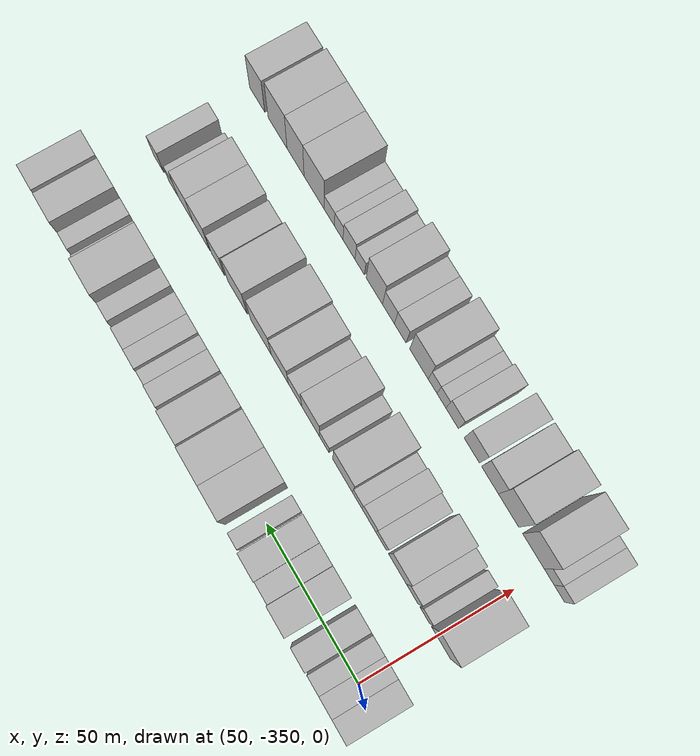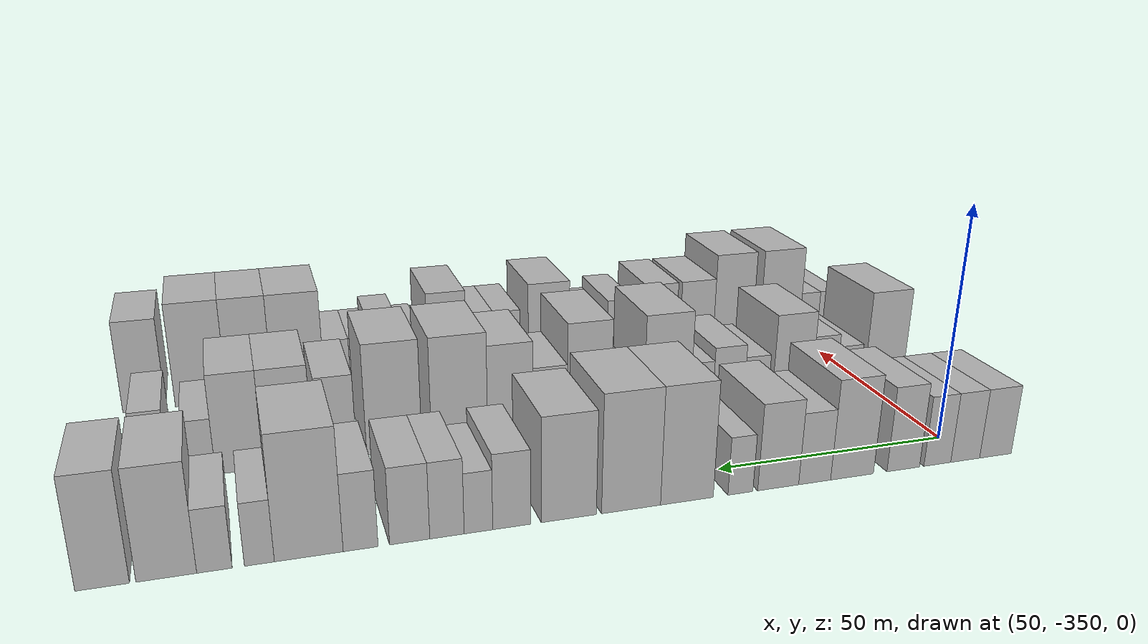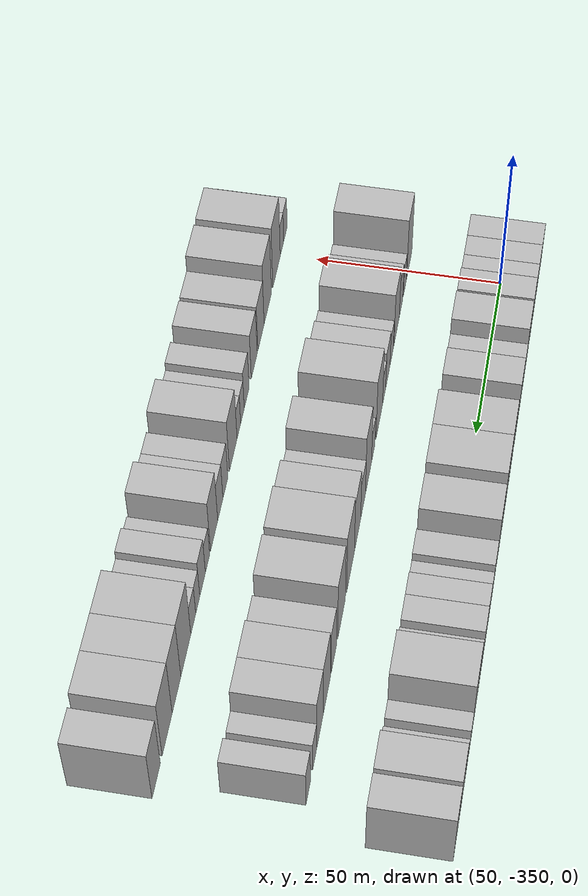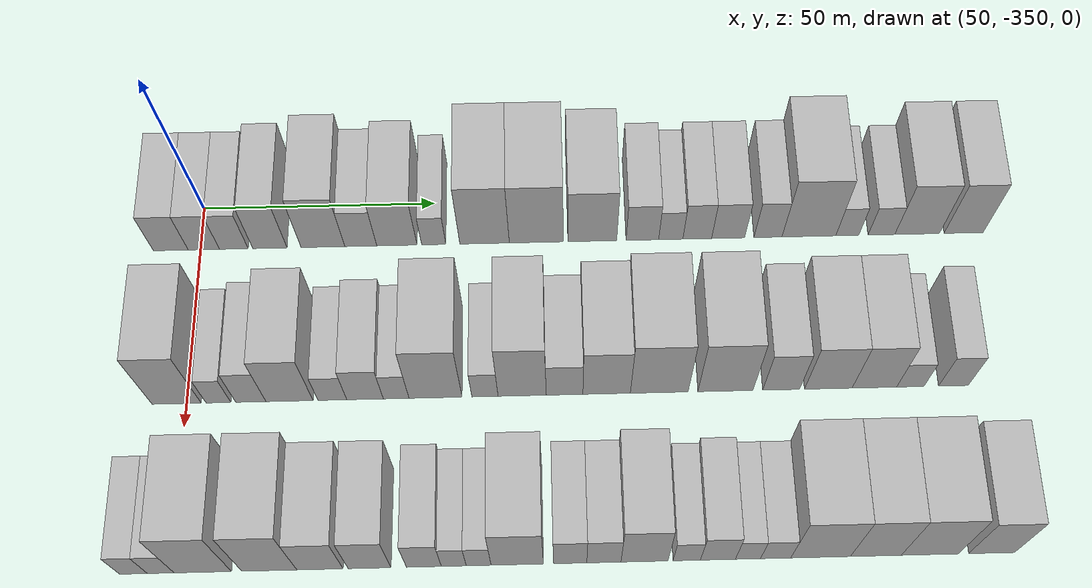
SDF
<sdf version="1.6">
 <world name="default">
  <model name="building_1">
   <static>1</static>
   <pose>50.0000 -356.2770 0 0.000000 0.000000 0.000000</pose>
   <link name="link">
    <pose>0 0 7.50 0 0 0</pose>
    <collision name="collision"><geometry><box><size>20.0000 7.4460 15.0000</size></box></geometry></collision>
    <visual name="visual">
     <cast_shadows>0</cast_shadows>
     <geometry><box><size>20.0000 7.4460 15.0000</size></box></geometry>
     <material>
      <script>
       <uri>model://HANNAS_wall/materials/scripts</uri>
       <uri>model://HANNAS_wall/materials/textures</uri>
       <name>vrc/HANNAS_wall</name>
      </script>
     </material>
    </visual>
   </link>
  </model>
  <model name="building_2">
   <static>1</static>
   <pose>50.0000 -349.2100 0 0.000000 0.000000 0.000000</pose>
   <link name="link">
    <pose>0 0 7.50 0 0 0</pose>
    <collision name="collision"><geometry><box><size>20.0000 6.6880 15.0000</size></box></geometry></collision>
    <visual name="visual">
     <cast_shadows>0</cast_shadows>
     <geometry><box><size>20.0000 6.6880 15.0000</size></box></geometry>
     <material>
      <script>
       <uri>model://HANNAS_wall/materials/scripts</uri>
       <uri>model://HANNAS_wall/materials/textures</uri>
       <name>vrc/HANNAS_wall</name>
      </script>
     </material>
    </visual>
   </link>
  </model>
  <model name="building_3">
   <static>1</static>
   <pose>50.0000 -342.8018 0 0.000000 0.000000 0.000000</pose>
   <link name="link">
    <pose>0 0 7.50 0 0 0</pose>
    <collision name="collision"><geometry><box><size>20.0000 6.1283 15.0000</size></box></geometry></collision>
    <visual name="visual">
     <cast_shadows>0</cast_shadows>
     <geometry><box><size>20.0000 6.1283 15.0000</size></box></geometry>
     <material>
      <script>
       <uri>model://HANNAS_wall/materials/scripts</uri>
       <uri>model://HANNAS_wall/materials/textures</uri>
       <name>vrc/HANNAS_wall</name>
      </script>
     </material>
    </visual>
   </link>
  </model>
  <model name="building_4">
   <static>1</static>
   <pose>50.0000 -335.0817 0 0.000000 0.000000 0.000000</pose>
   <link name="link">
    <pose>0 0 9.00 0 0 0</pose>
    <collision name="collision"><geometry><box><size>20.0000 7.3120 18.0000</size></box></geometry></collision>
    <visual name="visual">
     <cast_shadows>0</cast_shadows>
     <geometry><box><size>20.0000 7.3120 18.0000</size></box></geometry>
     <material>
      <script>
       <uri>model://HANNAS_wall/materials/scripts</uri>
       <uri>model://HANNAS_wall/materials/textures</uri>
       <name>vrc/HANNAS_wall</name>
      </script>
     </material>
    </visual>
   </link>
  </model>
  <model name="building_5">
   <static>1</static>
   <pose>50.0000 -323.7454 0 0.000000 0.000000 0.000000</pose>
   <link name="link">
    <pose>0 0 10.50 0 0 0</pose>
    <collision name="collision"><geometry><box><size>20.0000 9.3605 21.0000</size></box></geometry></collision>
    <visual name="visual">
     <cast_shadows>0</cast_shadows>
     <geometry><box><size>20.0000 9.3605 21.0000</size></box></geometry>
     <material>
      <script>
       <uri>model://HANNAS_wall/materials/scripts</uri>
       <uri>model://HANNAS_wall/materials/textures</uri>
       <name>vrc/HANNAS_wall</name>
      </script>
     </material>
    </visual>
   </link>
  </model>
  <model name="building_6">
   <static>1</static>
   <pose>50.0000 -315.6376 0 0.000000 0.000000 0.000000</pose>
   <link name="link">
    <pose>0 0 7.50 0 0 0</pose>
    <collision name="collision"><geometry><box><size>20.0000 6.8551 15.0000</size></box></geometry></collision>
    <visual name="visual">
     <cast_shadows>0</cast_shadows>
     <geometry><box><size>20.0000 6.8551 15.0000</size></box></geometry>
     <material>
      <script>
       <uri>model://HANNAS_wall/materials/scripts</uri>
       <uri>model://HANNAS_wall/materials/textures</uri>
       <name>vrc/HANNAS_wall</name>
      </script>
     </material>
    </visual>
   </link>
  </model>
  <model name="building_7">
   <static>1</static>
   <pose>50.0000 -307.8931 0 0.000000 0.000000 0.000000</pose>
   <link name="link">
    <pose>0 0 9.00 0 0 0</pose>
    <collision name="collision"><geometry><box><size>20.0000 8.6339 18.0000</size></box></geometry></collision>
    <visual name="visual">
     <cast_shadows>0</cast_shadows>
     <geometry><box><size>20.0000 8.6339 18.0000</size></box></geometry>
     <material>
      <script>
       <uri>model://HANNAS_wall/materials/scripts</uri>
       <uri>model://HANNAS_wall/materials/textures</uri>
       <name>vrc/HANNAS_wall</name>
      </script>
     </material>
    </visual>
   </link>
  </model>
  <model name="building_8">
   <static>1</static>
   <pose>50.0000 -299.9925 0 0.000000 0.000000 0.000000</pose>
   <link name="link">
    <pose>0 0 6.00 0 0 0</pose>
    <collision name="collision"><geometry><box><size>20.0000 5.1674 12.0000</size></box></geometry></collision>
    <visual name="visual">
     <cast_shadows>0</cast_shadows>
     <geometry><box><size>20.0000 5.1674 12.0000</size></box></geometry>
     <material>
      <script>
       <uri>model://HANNAS_wall/materials/scripts</uri>
       <uri>model://HANNAS_wall/materials/textures</uri>
       <name>vrc/HANNAS_wall</name>
      </script>
     </material>
    </visual>
   </link>
  </model>
  <model name="building_9">
   <static>1</static>
   <pose>50.0000 -289.0979 0 0.000000 0.000000 0.000000</pose>
   <link name="link">
    <pose>0 0 12.00 0 0 0</pose>
    <collision name="collision"><geometry><box><size>20.0000 10.6217 24.0000</size></box></geometry></collision>
    <visual name="visual">
     <cast_shadows>0</cast_shadows>
     <geometry><box><size>20.0000 10.6217 24.0000</size></box></geometry>
     <material>
      <script>
       <uri>model://HANNAS_wall/materials/scripts</uri>
       <uri>model://HANNAS_wall/materials/textures</uri>
       <name>vrc/HANNAS_wall</name>
      </script>
     </material>
    </visual>
   </link>
  </model>
  <model name="building_10">
   <static>1</static>
   <pose>50.0000 -278.0000 0 0.000000 0.000000 0.000000</pose>
   <link name="link">
    <pose>0 0 12.00 0 0 0</pose>
    <collision name="collision"><geometry><box><size>20.0000 11.5742 24.0000</size></box></geometry></collision>
    <visual name="visual">
     <cast_shadows>0</cast_shadows>
     <geometry><box><size>20.0000 11.5742 24.0000</size></box></geometry>
     <material>
      <script>
       <uri>model://HANNAS_wall/materials/scripts</uri>
       <uri>model://HANNAS_wall/materials/textures</uri>
       <name>vrc/HANNAS_wall</name>
      </script>
     </material>
    </visual>
   </link>
  </model>
  <model name="building_11">
   <static>1</static>
   <pose>50.0000 -265.9669 0 0.000000 0.000000 0.000000</pose>
   <link name="link">
    <pose>0 0 10.50 0 0 0</pose>
    <collision name="collision"><geometry><box><size>20.0000 10.4920 21.0000</size></box></geometry></collision>
    <visual name="visual">
     <cast_shadows>0</cast_shadows>
     <geometry><box><size>20.0000 10.4920 21.0000</size></box></geometry>
     <material>
      <script>
       <uri>model://HANNAS_wall/materials/scripts</uri>
       <uri>model://HANNAS_wall/materials/textures</uri>
       <name>vrc/HANNAS_wall</name>
      </script>
     </material>
    </visual>
   </link>
  </model>
  <model name="building_12">
   <static>1</static>
   <pose>50.0000 -255.2145 0 0.000000 0.000000 0.000000</pose>
   <link name="link">
    <pose>0 0 7.50 0 0 0</pose>
    <collision name="collision"><geometry><box><size>20.0000 7.0128 15.0000</size></box></geometry></collision>
    <visual name="visual">
     <cast_shadows>0</cast_shadows>
     <geometry><box><size>20.0000 7.0128 15.0000</size></box></geometry>
     <material>
      <script>
       <uri>model://HANNAS_wall/materials/scripts</uri>
       <uri>model://HANNAS_wall/materials/textures</uri>
       <name>vrc/HANNAS_wall</name>
      </script>
     </material>
    </visual>
   </link>
  </model>
  <model name="building_13">
   <static>1</static>
   <pose>50.0000 -249.1054 0 0.000000 0.000000 0.000000</pose>
   <link name="link">
    <pose>0 0 6.00 0 0 0</pose>
    <collision name="collision"><geometry><box><size>20.0000 5.2054 12.0000</size></box></geometry></collision>
    <visual name="visual">
     <cast_shadows>0</cast_shadows>
     <geometry><box><size>20.0000 5.2054 12.0000</size></box></geometry>
     <material>
      <script>
       <uri>model://HANNAS_wall/materials/scripts</uri>
       <uri>model://HANNAS_wall/materials/textures</uri>
       <name>vrc/HANNAS_wall</name>
      </script>
     </material>
    </visual>
   </link>
  </model>
  <model name="building_14">
   <static>1</static>
   <pose>50.0000 -243.4042 0 0.000000 0.000000 0.000000</pose>
   <link name="link">
    <pose>0 0 7.50 0 0 0</pose>
    <collision name="collision"><geometry><box><size>20.0000 6.1970 15.0000</size></box></geometry></collision>
    <visual name="visual">
     <cast_shadows>0</cast_shadows>
     <geometry><box><size>20.0000 6.1970 15.0000</size></box></geometry>
     <material>
      <script>
       <uri>model://HANNAS_wall/materials/scripts</uri>
       <uri>model://HANNAS_wall/materials/textures</uri>
       <name>vrc/HANNAS_wall</name>
      </script>
     </material>
    </visual>
   </link>
  </model>
  <model name="building_15">
   <static>1</static>
   <pose>50.0000 -236.7528 0 0.000000 0.000000 0.000000</pose>
   <link name="link">
    <pose>0 0 7.50 0 0 0</pose>
    <collision name="collision"><geometry><box><size>20.0000 7.1060 15.0000</size></box></geometry></collision>
    <visual name="visual">
     <cast_shadows>0</cast_shadows>
     <geometry><box><size>20.0000 7.1060 15.0000</size></box></geometry>
     <material>
      <script>
       <uri>model://HANNAS_wall/materials/scripts</uri>
       <uri>model://HANNAS_wall/materials/textures</uri>
       <name>vrc/HANNAS_wall</name>
      </script>
     </material>
    </visual>
   </link>
  </model>
  <model name="building_16">
   <static>1</static>
   <pose>50.0000 -228.1821 0 0.000000 0.000000 0.000000</pose>
   <link name="link">
    <pose>0 0 7.50 0 0 0</pose>
    <collision name="collision"><geometry><box><size>20.0000 6.0353 15.0000</size></box></geometry></collision>
    <visual name="visual">
     <cast_shadows>0</cast_shadows>
     <geometry><box><size>20.0000 6.0353 15.0000</size></box></geometry>
     <material>
      <script>
       <uri>model://HANNAS_wall/materials/scripts</uri>
       <uri>model://HANNAS_wall/materials/textures</uri>
       <name>vrc/HANNAS_wall</name>
      </script>
     </material>
    </visual>
   </link>
  </model>
  <model name="building_17">
   <static>1</static>
   <pose>50.0000 -219.3494 0 0.000000 0.000000 0.000000</pose>
   <link name="link">
    <pose>0 0 12.00 0 0 0</pose>
    <collision name="collision"><geometry><box><size>20.0000 11.6301 24.0000</size></box></geometry></collision>
    <visual name="visual">
     <cast_shadows>0</cast_shadows>
     <geometry><box><size>20.0000 11.6301 24.0000</size></box></geometry>
     <material>
      <script>
       <uri>model://HANNAS_wall/materials/scripts</uri>
       <uri>model://HANNAS_wall/materials/textures</uri>
       <name>vrc/HANNAS_wall</name>
      </script>
     </material>
    </visual>
   </link>
  </model>
  <model name="building_18">
   <static>1</static>
   <pose>50.0000 -211.0575 0 0.000000 0.000000 0.000000</pose>
   <link name="link">
    <pose>0 0 6.00 0 0 0</pose>
    <collision name="collision"><geometry><box><size>20.0000 4.9537 12.0000</size></box></geometry></collision>
    <visual name="visual">
     <cast_shadows>0</cast_shadows>
     <geometry><box><size>20.0000 4.9537 12.0000</size></box></geometry>
     <material>
      <script>
       <uri>model://HANNAS_wall/materials/scripts</uri>
       <uri>model://HANNAS_wall/materials/textures</uri>
       <name>vrc/HANNAS_wall</name>
      </script>
     </material>
    </visual>
   </link>
  </model>
  <model name="building_19">
   <static>1</static>
   <pose>50.0000 -203.7017 0 0.000000 0.000000 0.000000</pose>
   <link name="link">
    <pose>0 0 6.00 0 0 0</pose>
    <collision name="collision"><geometry><box><size>20.0000 5.7579 12.0000</size></box></geometry></collision>
    <visual name="visual">
     <cast_shadows>0</cast_shadows>
     <geometry><box><size>20.0000 5.7579 12.0000</size></box></geometry>
     <material>
      <script>
       <uri>model://HANNAS_wall/materials/scripts</uri>
       <uri>model://HANNAS_wall/materials/textures</uri>
       <name>vrc/HANNAS_wall</name>
      </script>
     </material>
    </visual>
   </link>
  </model>
  <model name="building_20">
   <static>1</static>
   <pose>50.0000 -195.9950 0 0.000000 0.000000 0.000000</pose>
   <link name="link">
    <pose>0 0 10.50 0 0 0</pose>
    <collision name="collision"><geometry><box><size>20.0000 9.6555 21.0000</size></box></geometry></collision>
    <visual name="visual">
     <cast_shadows>0</cast_shadows>
     <geometry><box><size>20.0000 9.6555 21.0000</size></box></geometry>
     <material>
      <script>
       <uri>model://HANNAS_wall/materials/scripts</uri>
       <uri>model://HANNAS_wall/materials/textures</uri>
       <name>vrc/HANNAS_wall</name>
      </script>
     </material>
    </visual>
   </link>
  </model>
  <model name="building_21">
   <static>1</static>
   <pose>50.0000 -185.9400 0 0.000000 0.000000 0.000000</pose>
   <link name="link">
    <pose>0 0 10.50 0 0 0</pose>
    <collision name="collision"><geometry><box><size>20.0000 8.4545 21.0000</size></box></geometry></collision>
    <visual name="visual">
     <cast_shadows>0</cast_shadows>
     <geometry><box><size>20.0000 8.4545 21.0000</size></box></geometry>
     <material>
      <script>
       <uri>model://HANNAS_wall/materials/scripts</uri>
       <uri>model://HANNAS_wall/materials/textures</uri>
       <name>vrc/HANNAS_wall</name>
      </script>
     </material>
    </visual>
   </link>
  </model>
  <model name="building_82">
   <static>1</static>
   <pose>85.0000 -351.9914 0 0.000000 0.000000 0.000000</pose>
   <link name="link">
    <pose>0 0 12.00 0 0 0</pose>
    <collision name="collision"><geometry><box><size>20.0000 10.0171 24.0000</size></box></geometry></collision>
    <visual name="visual">
     <cast_shadows>0</cast_shadows>
     <geometry><box><size>20.0000 10.0171 24.0000</size></box></geometry>
     <material>
      <script>
       <uri>model://HANNAS_wall/materials/scripts</uri>
       <uri>model://HANNAS_wall/materials/textures</uri>
       <name>vrc/HANNAS_wall</name>
      </script>
     </material>
    </visual>
   </link>
  </model>
  <model name="building_83">
   <static>1</static>
   <pose>85.0000 -343.4618 0 0.000000 0.000000 0.000000</pose>
   <link name="link">
    <pose>0 0 6.00 0 0 0</pose>
    <collision name="collision"><geometry><box><size>20.0000 5.0421 12.0000</size></box></geometry></collision>
    <visual name="visual">
     <cast_shadows>0</cast_shadows>
     <geometry><box><size>20.0000 5.0421 12.0000</size></box></geometry>
     <material>
      <script>
       <uri>model://HANNAS_wall/materials/scripts</uri>
       <uri>model://HANNAS_wall/materials/textures</uri>
       <name>vrc/HANNAS_wall</name>
      </script>
     </material>
    </visual>
   </link>
  </model>
  <model name="building_84">
   <static>1</static>
   <pose>85.0000 -336.8630 0 0.000000 0.000000 0.000000</pose>
   <link name="link">
    <pose>0 0 7.50 0 0 0</pose>
    <collision name="collision"><geometry><box><size>20.0000 6.1555 15.0000</size></box></geometry></collision>
    <visual name="visual">
     <cast_shadows>0</cast_shadows>
     <geometry><box><size>20.0000 6.1555 15.0000</size></box></geometry>
     <material>
      <script>
       <uri>model://HANNAS_wall/materials/scripts</uri>
       <uri>model://HANNAS_wall/materials/textures</uri>
       <name>vrc/HANNAS_wall</name>
      </script>
     </material>
    </visual>
   </link>
  </model>
  <model name="building_85">
   <static>1</static>
   <pose>85.0000 -328.9729 0 0.000000 0.000000 0.000000</pose>
   <link name="link">
    <pose>0 0 10.50 0 0 0</pose>
    <collision name="collision"><geometry><box><size>20.0000 9.6248 21.0000</size></box></geometry></collision>
    <visual name="visual">
     <cast_shadows>0</cast_shadows>
     <geometry><box><size>20.0000 9.6248 21.0000</size></box></geometry>
     <material>
      <script>
       <uri>model://HANNAS_wall/materials/scripts</uri>
       <uri>model://HANNAS_wall/materials/textures</uri>
       <name>vrc/HANNAS_wall</name>
      </script>
     </material>
    </visual>
   </link>
  </model>
  <model name="building_86">
   <static>1</static>
   <pose>85.0000 -320.2186 0 0.000000 0.000000 0.000000</pose>
   <link name="link">
    <pose>0 0 6.00 0 0 0</pose>
    <collision name="collision"><geometry><box><size>20.0000 5.8838 12.0000</size></box></geometry></collision>
    <visual name="visual">
     <cast_shadows>0</cast_shadows>
     <geometry><box><size>20.0000 5.8838 12.0000</size></box></geometry>
     <material>
      <script>
       <uri>model://HANNAS_wall/materials/scripts</uri>
       <uri>model://HANNAS_wall/materials/textures</uri>
       <name>vrc/HANNAS_wall</name>
      </script>
     </material>
    </visual>
   </link>
  </model>
  <model name="building_87">
   <static>1</static>
   <pose>85.0000 -313.5499 0 0.000000 0.000000 0.000000</pose>
   <link name="link">
    <pose>0 0 7.50 0 0 0</pose>
    <collision name="collision"><geometry><box><size>20.0000 7.4537 15.0000</size></box></geometry></collision>
    <visual name="visual">
     <cast_shadows>0</cast_shadows>
     <geometry><box><size>20.0000 7.4537 15.0000</size></box></geometry>
     <material>
      <script>
       <uri>model://HANNAS_wall/materials/scripts</uri>
       <uri>model://HANNAS_wall/materials/textures</uri>
       <name>vrc/HANNAS_wall</name>
      </script>
     </material>
    </visual>
   </link>
  </model>
  <model name="building_88">
   <static>1</static>
   <pose>85.0000 -307.1971 0 0.000000 0.000000 0.000000</pose>
   <link name="link">
    <pose>0 0 6.00 0 0 0</pose>
    <collision name="collision"><geometry><box><size>20.0000 5.2519 12.0000</size></box></geometry></collision>
    <visual name="visual">
     <cast_shadows>0</cast_shadows>
     <geometry><box><size>20.0000 5.2519 12.0000</size></box></geometry>
     <material>
      <script>
       <uri>model://HANNAS_wall/materials/scripts</uri>
       <uri>model://HANNAS_wall/materials/textures</uri>
       <name>vrc/HANNAS_wall</name>
      </script>
     </material>
    </visual>
   </link>
  </model>
  <model name="building_89">
   <static>1</static>
   <pose>85.0000 -299.1506 0 0.000000 0.000000 0.000000</pose>
   <link name="link">
    <pose>0 0 12.00 0 0 0</pose>
    <collision name="collision"><geometry><box><size>20.0000 10.8411 24.0000</size></box></geometry></collision>
    <visual name="visual">
     <cast_shadows>0</cast_shadows>
     <geometry><box><size>20.0000 10.8411 24.0000</size></box></geometry>
     <material>
      <script>
       <uri>model://HANNAS_wall/materials/scripts</uri>
       <uri>model://HANNAS_wall/materials/textures</uri>
       <name>vrc/HANNAS_wall</name>
      </script>
     </material>
    </visual>
   </link>
  </model>
  <model name="building_90">
   <static>1</static>
   <pose>85.0000 -289.0468 0 0.000000 0.000000 0.000000</pose>
   <link name="link">
    <pose>0 0 6.00 0 0 0</pose>
    <collision name="collision"><geometry><box><size>20.0000 5.3664 12.0000</size></box></geometry></collision>
    <visual name="visual">
     <cast_shadows>0</cast_shadows>
     <geometry><box><size>20.0000 5.3664 12.0000</size></box></geometry>
     <material>
      <script>
       <uri>model://HANNAS_wall/materials/scripts</uri>
       <uri>model://HANNAS_wall/materials/textures</uri>
       <name>vrc/HANNAS_wall</name>
      </script>
     </material>
    </visual>
   </link>
  </model>
  <model name="building_91">
   <static>1</static>
   <pose>85.0000 -281.4269 0 0.000000 0.000000 0.000000</pose>
   <link name="link">
    <pose>0 0 12.00 0 0 0</pose>
    <collision name="collision"><geometry><box><size>20.0000 9.8734 24.0000</size></box></geometry></collision>
    <visual name="visual">
     <cast_shadows>0</cast_shadows>
     <geometry><box><size>20.0000 9.8734 24.0000</size></box></geometry>
     <material>
      <script>
       <uri>model://HANNAS_wall/materials/scripts</uri>
       <uri>model://HANNAS_wall/materials/textures</uri>
       <name>vrc/HANNAS_wall</name>
      </script>
     </material>
    </visual>
   </link>
  </model>
  <model name="building_92">
   <static>1</static>
   <pose>85.0000 -272.7439 0 0.000000 0.000000 0.000000</pose>
   <link name="link">
    <pose>0 0 7.50 0 0 0</pose>
    <collision name="collision"><geometry><box><size>20.0000 7.4925 15.0000</size></box></geometry></collision>
    <visual name="visual">
     <cast_shadows>0</cast_shadows>
     <geometry><box><size>20.0000 7.4925 15.0000</size></box></geometry>
     <material>
      <script>
       <uri>model://HANNAS_wall/materials/scripts</uri>
       <uri>model://HANNAS_wall/materials/textures</uri>
       <name>vrc/HANNAS_wall</name>
      </script>
     </material>
    </visual>
   </link>
  </model>
  <model name="building_93">
   <static>1</static>
   <pose>85.0000 -264.1344 0 0.000000 0.000000 0.000000</pose>
   <link name="link">
    <pose>0 0 10.50 0 0 0</pose>
    <collision name="collision"><geometry><box><size>20.0000 9.7265 21.0000</size></box></geometry></collision>
    <visual name="visual">
     <cast_shadows>0</cast_shadows>
     <geometry><box><size>20.0000 9.7265 21.0000</size></box></geometry>
     <material>
      <script>
       <uri>model://HANNAS_wall/materials/scripts</uri>
       <uri>model://HANNAS_wall/materials/textures</uri>
       <name>vrc/HANNAS_wall</name>
      </script>
     </material>
    </visual>
   </link>
  </model>
  <model name="building_94">
   <static>1</static>
   <pose>85.0000 -253.3458 0 0.000000 0.000000 0.000000</pose>
   <link name="link">
    <pose>0 0 12.00 0 0 0</pose>
    <collision name="collision"><geometry><box><size>20.0000 11.8507 24.0000</size></box></geometry></collision>
    <visual name="visual">
     <cast_shadows>0</cast_shadows>
     <geometry><box><size>20.0000 11.8507 24.0000</size></box></geometry>
     <material>
      <script>
       <uri>model://HANNAS_wall/materials/scripts</uri>
       <uri>model://HANNAS_wall/materials/textures</uri>
       <name>vrc/HANNAS_wall</name>
      </script>
     </material>
    </visual>
   </link>
  </model>
  <model name="building_95">
   <static>1</static>
   <pose>85.0000 -239.7643 0 0.000000 0.000000 0.000000</pose>
   <link name="link">
    <pose>0 0 12.00 0 0 0</pose>
    <collision name="collision"><geometry><box><size>20.0000 11.3125 24.0000</size></box></geometry></collision>
    <visual name="visual">
     <cast_shadows>0</cast_shadows>
     <geometry><box><size>20.0000 11.3125 24.0000</size></box></geometry>
     <material>
      <script>
       <uri>model://HANNAS_wall/materials/scripts</uri>
       <uri>model://HANNAS_wall/materials/textures</uri>
       <name>vrc/HANNAS_wall</name>
      </script>
     </material>
    </visual>
   </link>
  </model>
  <model name="building_96">
   <static>1</static>
   <pose>85.0000 -228.3122 0 0.000000 0.000000 0.000000</pose>
   <link name="link">
    <pose>0 0 9.00 0 0 0</pose>
    <collision name="collision"><geometry><box><size>20.0000 7.5917 18.0000</size></box></geometry></collision>
    <visual name="visual">
     <cast_shadows>0</cast_shadows>
     <geometry><box><size>20.0000 7.5917 18.0000</size></box></geometry>
     <material>
      <script>
       <uri>model://HANNAS_wall/materials/scripts</uri>
       <uri>model://HANNAS_wall/materials/textures</uri>
       <name>vrc/HANNAS_wall</name>
      </script>
     </material>
    </visual>
   </link>
  </model>
  <model name="building_97">
   <static>1</static>
   <pose>85.0000 -218.6162 0 0.000000 0.000000 0.000000</pose>
   <link name="link">
    <pose>0 0 10.50 0 0 0</pose>
    <collision name="collision"><geometry><box><size>20.0000 9.8005 21.0000</size></box></geometry></collision>
    <visual name="visual">
     <cast_shadows>0</cast_shadows>
     <geometry><box><size>20.0000 9.8005 21.0000</size></box></geometry>
     <material>
      <script>
       <uri>model://HANNAS_wall/materials/scripts</uri>
       <uri>model://HANNAS_wall/materials/textures</uri>
       <name>vrc/HANNAS_wall</name>
      </script>
     </material>
    </visual>
   </link>
  </model>
  <model name="building_98">
   <static>1</static>
   <pose>85.0000 -209.1326 0 0.000000 0.000000 0.000000</pose>
   <link name="link">
    <pose>0 0 10.50 0 0 0</pose>
    <collision name="collision"><geometry><box><size>20.0000 9.1667 21.0000</size></box></geometry></collision>
    <visual name="visual">
     <cast_shadows>0</cast_shadows>
     <geometry><box><size>20.0000 9.1667 21.0000</size></box></geometry>
     <material>
      <script>
       <uri>model://HANNAS_wall/materials/scripts</uri>
       <uri>model://HANNAS_wall/materials/textures</uri>
       <name>vrc/HANNAS_wall</name>
      </script>
     </material>
    </visual>
   </link>
  </model>
  <model name="building_99">
   <static>1</static>
   <pose>85.0000 -201.7392 0 0.000000 0.000000 0.000000</pose>
   <link name="link">
    <pose>0 0 6.00 0 0 0</pose>
    <collision name="collision"><geometry><box><size>20.0000 5.6201 12.0000</size></box></geometry></collision>
    <visual name="visual">
     <cast_shadows>0</cast_shadows>
     <geometry><box><size>20.0000 5.6201 12.0000</size></box></geometry>
     <material>
      <script>
       <uri>model://HANNAS_wall/materials/scripts</uri>
       <uri>model://HANNAS_wall/materials/textures</uri>
       <name>vrc/HANNAS_wall</name>
      </script>
     </material>
    </visual>
   </link>
  </model>
  <model name="building_100">
   <static>1</static>
   <pose>85.0000 -192.8710 0 0.000000 0.000000 0.000000</pose>
   <link name="link">
    <pose>0 0 7.50 0 0 0</pose>
    <collision name="collision"><geometry><box><size>20.0000 6.1164 15.0000</size></box></geometry></collision>
    <visual name="visual">
     <cast_shadows>0</cast_shadows>
     <geometry><box><size>20.0000 6.1164 15.0000</size></box></geometry>
     <material>
      <script>
       <uri>model://HANNAS_wall/materials/scripts</uri>
       <uri>model://HANNAS_wall/materials/textures</uri>
       <name>vrc/HANNAS_wall</name>
      </script>
     </material>
    </visual>
   </link>
  </model>
  <model name="building_163">
   <static>1</static>
   <pose>120.0000 -357.3202 0 0.000000 0.000000 0.000000</pose>
   <link name="link">
    <pose>0 0 6.00 0 0 0</pose>
    <collision name="collision"><geometry><box><size>20.0000 5.3596 12.0000</size></box></geometry></collision>
    <visual name="visual">
     <cast_shadows>0</cast_shadows>
     <geometry><box><size>20.0000 5.3596 12.0000</size></box></geometry>
     <material>
      <script>
       <uri>model://HANNAS_wall/materials/scripts</uri>
       <uri>model://HANNAS_wall/materials/textures</uri>
       <name>vrc/HANNAS_wall</name>
      </script>
     </material>
    </visual>
   </link>
  </model>
  <model name="building_164">
   <static>1</static>
   <pose>120.0000 -352.0387 0 0.000000 0.000000 0.000000</pose>
   <link name="link">
    <pose>0 0 6.00 0 0 0</pose>
    <collision name="collision"><geometry><box><size>20.0000 5.2035 12.0000</size></box></geometry></collision>
    <visual name="visual">
     <cast_shadows>0</cast_shadows>
     <geometry><box><size>20.0000 5.2035 12.0000</size></box></geometry>
     <material>
      <script>
       <uri>model://HANNAS_wall/materials/scripts</uri>
       <uri>model://HANNAS_wall/materials/textures</uri>
       <name>vrc/HANNAS_wall</name>
      </script>
     </material>
    </visual>
   </link>
  </model>
  <model name="building_165">
   <static>1</static>
   <pose>120.0000 -343.8712 0 0.000000 0.000000 0.000000</pose>
   <link name="link">
    <pose>0 0 12.00 0 0 0</pose>
    <collision name="collision"><geometry><box><size>20.0000 11.1315 24.0000</size></box></geometry></collision>
    <visual name="visual">
     <cast_shadows>0</cast_shadows>
     <geometry><box><size>20.0000 11.1315 24.0000</size></box></geometry>
     <material>
      <script>
       <uri>model://HANNAS_wall/materials/scripts</uri>
       <uri>model://HANNAS_wall/materials/textures</uri>
       <name>vrc/HANNAS_wall</name>
      </script>
     </material>
    </visual>
   </link>
  </model>
  <model name="building_166">
   <static>1</static>
   <pose>120.0000 -330.9607 0 0.000000 0.000000 0.000000</pose>
   <link name="link">
    <pose>0 0 12.00 0 0 0</pose>
    <collision name="collision"><geometry><box><size>20.0000 10.6895 24.0000</size></box></geometry></collision>
    <visual name="visual">
     <cast_shadows>0</cast_shadows>
     <geometry><box><size>20.0000 10.6895 24.0000</size></box></geometry>
     <material>
      <script>
       <uri>model://HANNAS_wall/materials/scripts</uri>
       <uri>model://HANNAS_wall/materials/textures</uri>
       <name>vrc/HANNAS_wall</name>
      </script>
     </material>
    </visual>
   </link>
  </model>
  <model name="building_167">
   <static>1</static>
   <pose>120.0000 -321.1320 0 0.000000 0.000000 0.000000</pose>
   <link name="link">
    <pose>0 0 9.00 0 0 0</pose>
    <collision name="collision"><geometry><box><size>20.0000 8.9679 18.0000</size></box></geometry></collision>
    <visual name="visual">
     <cast_shadows>0</cast_shadows>
     <geometry><box><size>20.0000 8.9679 18.0000</size></box></geometry>
     <material>
      <script>
       <uri>model://HANNAS_wall/materials/scripts</uri>
       <uri>model://HANNAS_wall/materials/textures</uri>
       <name>vrc/HANNAS_wall</name>
      </script>
     </material>
    </visual>
   </link>
  </model>
  <model name="building_168">
   <static>1</static>
   <pose>120.0000 -311.4906 0 0.000000 0.000000 0.000000</pose>
   <link name="link">
    <pose>0 0 9.00 0 0 0</pose>
    <collision name="collision"><geometry><box><size>20.0000 8.3148 18.0000</size></box></geometry></collision>
    <visual name="visual">
     <cast_shadows>0</cast_shadows>
     <geometry><box><size>20.0000 8.3148 18.0000</size></box></geometry>
     <material>
      <script>
       <uri>model://HANNAS_wall/materials/scripts</uri>
       <uri>model://HANNAS_wall/materials/textures</uri>
       <name>vrc/HANNAS_wall</name>
      </script>
     </material>
    </visual>
   </link>
  </model>
  <model name="building_169">
   <static>1</static>
   <pose>120.0000 -300.9392 0 0.000000 0.000000 0.000000</pose>
   <link name="link">
    <pose>0 0 7.50 0 0 0</pose>
    <collision name="collision"><geometry><box><size>20.0000 6.7882 15.0000</size></box></geometry></collision>
    <visual name="visual">
     <cast_shadows>0</cast_shadows>
     <geometry><box><size>20.0000 6.7882 15.0000</size></box></geometry>
     <material>
      <script>
       <uri>model://HANNAS_wall/materials/scripts</uri>
       <uri>model://HANNAS_wall/materials/textures</uri>
       <name>vrc/HANNAS_wall</name>
      </script>
     </material>
    </visual>
   </link>
  </model>
  <model name="building_170">
   <static>1</static>
   <pose>120.0000 -295.1229 0 0.000000 0.000000 0.000000</pose>
   <link name="link">
    <pose>0 0 6.00 0 0 0</pose>
    <collision name="collision"><geometry><box><size>20.0000 4.8444 12.0000</size></box></geometry></collision>
    <visual name="visual">
     <cast_shadows>0</cast_shadows>
     <geometry><box><size>20.0000 4.8444 12.0000</size></box></geometry>
     <material>
      <script>
       <uri>model://HANNAS_wall/materials/scripts</uri>
       <uri>model://HANNAS_wall/materials/textures</uri>
       <name>vrc/HANNAS_wall</name>
      </script>
     </material>
    </visual>
   </link>
  </model>
  <model name="building_171">
   <static>1</static>
   <pose>120.0000 -290.2866 0 0.000000 0.000000 0.000000</pose>
   <link name="link">
    <pose>0 0 6.00 0 0 0</pose>
    <collision name="collision"><geometry><box><size>20.0000 4.8281 12.0000</size></box></geometry></collision>
    <visual name="visual">
     <cast_shadows>0</cast_shadows>
     <geometry><box><size>20.0000 4.8281 12.0000</size></box></geometry>
     <material>
      <script>
       <uri>model://HANNAS_wall/materials/scripts</uri>
       <uri>model://HANNAS_wall/materials/textures</uri>
       <name>vrc/HANNAS_wall</name>
      </script>
     </material>
    </visual>
   </link>
  </model>
  <model name="building_172">
   <static>1</static>
   <pose>120.0000 -282.7830 0 0.000000 0.000000 0.000000</pose>
   <link name="link">
    <pose>0 0 10.50 0 0 0</pose>
    <collision name="collision"><geometry><box><size>20.0000 10.1791 21.0000</size></box></geometry></collision>
    <visual name="visual">
     <cast_shadows>0</cast_shadows>
     <geometry><box><size>20.0000 10.1791 21.0000</size></box></geometry>
     <material>
      <script>
       <uri>model://HANNAS_wall/materials/scripts</uri>
       <uri>model://HANNAS_wall/materials/textures</uri>
       <name>vrc/HANNAS_wall</name>
      </script>
     </material>
    </visual>
   </link>
  </model>
  <model name="building_173">
   <static>1</static>
   <pose>120.0000 -272.4661 0 0.000000 0.000000 0.000000</pose>
   <link name="link">
    <pose>0 0 7.50 0 0 0</pose>
    <collision name="collision"><geometry><box><size>20.0000 6.4548 15.0000</size></box></geometry></collision>
    <visual name="visual">
     <cast_shadows>0</cast_shadows>
     <geometry><box><size>20.0000 6.4548 15.0000</size></box></geometry>
     <material>
      <script>
       <uri>model://HANNAS_wall/materials/scripts</uri>
       <uri>model://HANNAS_wall/materials/textures</uri>
       <name>vrc/HANNAS_wall</name>
      </script>
     </material>
    </visual>
   </link>
  </model>
  <model name="building_174">
   <static>1</static>
   <pose>120.0000 -265.9137 0 0.000000 0.000000 0.000000</pose>
   <link name="link">
    <pose>0 0 7.50 0 0 0</pose>
    <collision name="collision"><geometry><box><size>20.0000 6.6500 15.0000</size></box></geometry></collision>
    <visual name="visual">
     <cast_shadows>0</cast_shadows>
     <geometry><box><size>20.0000 6.6500 15.0000</size></box></geometry>
     <material>
      <script>
       <uri>model://HANNAS_wall/materials/scripts</uri>
       <uri>model://HANNAS_wall/materials/textures</uri>
       <name>vrc/HANNAS_wall</name>
      </script>
     </material>
    </visual>
   </link>
  </model>
  <model name="building_175">
   <static>1</static>
   <pose>120.0000 -258.0037 0 0.000000 0.000000 0.000000</pose>
   <link name="link">
    <pose>0 0 10.50 0 0 0</pose>
    <collision name="collision"><geometry><box><size>20.0000 9.1700 21.0000</size></box></geometry></collision>
    <visual name="visual">
     <cast_shadows>0</cast_shadows>
     <geometry><box><size>20.0000 9.1700 21.0000</size></box></geometry>
     <material>
      <script>
       <uri>model://HANNAS_wall/materials/scripts</uri>
       <uri>model://HANNAS_wall/materials/textures</uri>
       <name>vrc/HANNAS_wall</name>
      </script>
     </material>
    </visual>
   </link>
  </model>
  <model name="building_176">
   <static>1</static>
   <pose>120.0000 -249.7528 0 0.000000 0.000000 0.000000</pose>
   <link name="link">
    <pose>0 0 6.00 0 0 0</pose>
    <collision name="collision"><geometry><box><size>20.0000 5.3318 12.0000</size></box></geometry></collision>
    <visual name="visual">
     <cast_shadows>0</cast_shadows>
     <geometry><box><size>20.0000 5.3318 12.0000</size></box></geometry>
     <material>
      <script>
       <uri>model://HANNAS_wall/materials/scripts</uri>
       <uri>model://HANNAS_wall/materials/textures</uri>
       <name>vrc/HANNAS_wall</name>
      </script>
     </material>
    </visual>
   </link>
  </model>
  <model name="building_177">
   <static>1</static>
   <pose>120.0000 -243.6638 0 0.000000 0.000000 0.000000</pose>
   <link name="link">
    <pose>0 0 7.50 0 0 0</pose>
    <collision name="collision"><geometry><box><size>20.0000 6.8462 15.0000</size></box></geometry></collision>
    <visual name="visual">
     <cast_shadows>0</cast_shadows>
     <geometry><box><size>20.0000 6.8462 15.0000</size></box></geometry>
     <material>
      <script>
       <uri>model://HANNAS_wall/materials/scripts</uri>
       <uri>model://HANNAS_wall/materials/textures</uri>
       <name>vrc/HANNAS_wall</name>
      </script>
     </material>
    </visual>
   </link>
  </model>
  <model name="building_178">
   <static>1</static>
   <pose>120.0000 -237.7871 0 0.000000 0.000000 0.000000</pose>
   <link name="link">
    <pose>0 0 6.00 0 0 0</pose>
    <collision name="collision"><geometry><box><size>20.0000 4.9071 12.0000</size></box></geometry></collision>
    <visual name="visual">
     <cast_shadows>0</cast_shadows>
     <geometry><box><size>20.0000 4.9071 12.0000</size></box></geometry>
     <material>
      <script>
       <uri>model://HANNAS_wall/materials/scripts</uri>
       <uri>model://HANNAS_wall/materials/textures</uri>
       <name>vrc/HANNAS_wall</name>
      </script>
     </material>
    </visual>
   </link>
  </model>
  <model name="building_179">
   <static>1</static>
   <pose>120.0000 -232.3773 0 0.000000 0.000000 0.000000</pose>
   <link name="link">
    <pose>0 0 6.00 0 0 0</pose>
    <collision name="collision"><geometry><box><size>20.0000 5.9127 12.0000</size></box></geometry></collision>
    <visual name="visual">
     <cast_shadows>0</cast_shadows>
     <geometry><box><size>20.0000 5.9127 12.0000</size></box></geometry>
     <material>
      <script>
       <uri>model://HANNAS_wall/materials/scripts</uri>
       <uri>model://HANNAS_wall/materials/textures</uri>
       <name>vrc/HANNAS_wall</name>
      </script>
     </material>
    </visual>
   </link>
  </model>
  <model name="building_180">
   <static>1</static>
   <pose>120.0000 -223.5861 0 0.000000 0.000000 0.000000</pose>
   <link name="link">
    <pose>0 0 12.00 0 0 0</pose>
    <collision name="collision"><geometry><box><size>20.0000 11.6696 24.0000</size></box></geometry></collision>
    <visual name="visual">
     <cast_shadows>0</cast_shadows>
     <geometry><box><size>20.0000 11.6696 24.0000</size></box></geometry>
     <material>
      <script>
       <uri>model://HANNAS_wall/materials/scripts</uri>
       <uri>model://HANNAS_wall/materials/textures</uri>
       <name>vrc/HANNAS_wall</name>
      </script>
     </material>
    </visual>
   </link>
  </model>
  <model name="building_181">
   <static>1</static>
   <pose>120.0000 -212.7590 0 0.000000 0.000000 0.000000</pose>
   <link name="link">
    <pose>0 0 12.00 0 0 0</pose>
    <collision name="collision"><geometry><box><size>20.0000 9.9847 24.0000</size></box></geometry></collision>
    <visual name="visual">
     <cast_shadows>0</cast_shadows>
     <geometry><box><size>20.0000 9.9847 24.0000</size></box></geometry>
     <material>
      <script>
       <uri>model://HANNAS_wall/materials/scripts</uri>
       <uri>model://HANNAS_wall/materials/textures</uri>
       <name>vrc/HANNAS_wall</name>
      </script>
     </material>
    </visual>
   </link>
  </model>
  <model name="building_182">
   <static>1</static>
   <pose>120.0000 -202.1759 0 0.000000 0.000000 0.000000</pose>
   <link name="link">
    <pose>0 0 12.00 0 0 0</pose>
    <collision name="collision"><geometry><box><size>20.0000 11.1815 24.0000</size></box></geometry></collision>
    <visual name="visual">
     <cast_shadows>0</cast_shadows>
     <geometry><box><size>20.0000 11.1815 24.0000</size></box></geometry>
     <material>
      <script>
       <uri>model://HANNAS_wall/materials/scripts</uri>
       <uri>model://HANNAS_wall/materials/textures</uri>
       <name>vrc/HANNAS_wall</name>
      </script>
     </material>
    </visual>
   </link>
  </model>
  <model name="building_183">
   <static>1</static>
   <pose>120.0000 -190.0640 0 0.000000 0.000000 0.000000</pose>
   <link name="link">
    <pose>0 0 10.50 0 0 0</pose>
    <collision name="collision"><geometry><box><size>20.0000 9.0422 21.0000</size></box></geometry></collision>
    <visual name="visual">
     <cast_shadows>0</cast_shadows>
     <geometry><box><size>20.0000 9.0422 21.0000</size></box></geometry>
     <material>
      <script>
       <uri>model://HANNAS_wall/materials/scripts</uri>
       <uri>model://HANNAS_wall/materials/textures</uri>
       <name>vrc/HANNAS_wall</name>
      </script>
     </material>
    </visual>
   </link>
  </model>
 </world>
</sdf>
